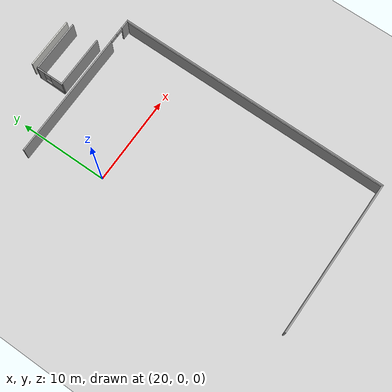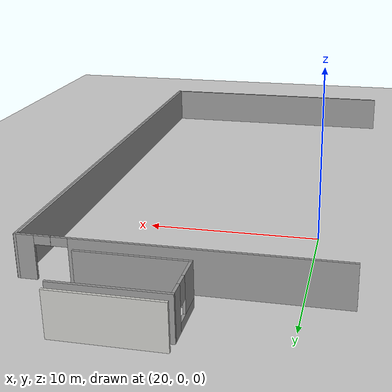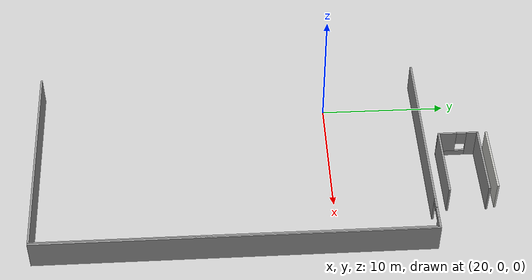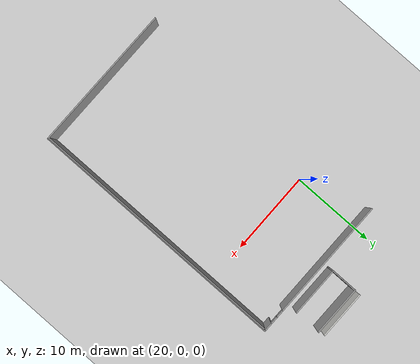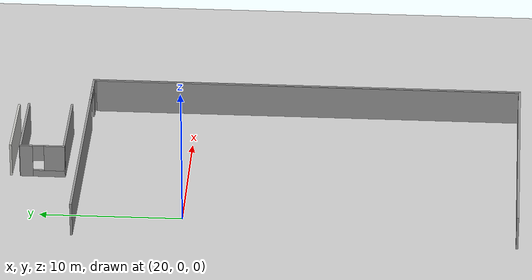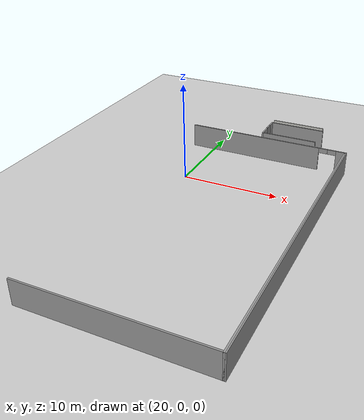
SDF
<sdf version="1.6">
 <world name="default">
  <model name="ground_plane">
   <static>1</static>
   <link name="link">
    <collision name="collision">
     <geometry><plane><normal>0 0 1</normal><size>100 100</size></plane></geometry>
     <surface>
      <contact><collide_bitmask>65535</collide_bitmask></contact>
      <friction><ode><mu>100</mu><mu2>50</mu2></ode></friction>
     </surface>
    </collision>
    <visual name="visual">
     <cast_shadows>0</cast_shadows>
     <geometry><plane><normal>0 0 1</normal><size>100 100</size></plane></geometry>
     <material>
      <script><uri>file://media/materials/scripts/gazebo.material</uri><name>Gazebo/Grey</name></script>
     </material>
    </visual>
   </link>
  </model>
  <model name="firstFloor">
   <pose>-0.116512 3.07366 0 0 -0 0</pose>
   <link name="Wall_1">
    <collision name="Wall_1_Collision">
     <geometry><box><size>17.25 0.15 2.5</size></box></geometry>
     <pose>0 0 1.25 0 -0 0</pose>
    </collision>
    <visual name="Wall_1_Visual">
     <pose>0 0 1.25 0 -0 0</pose>
     <geometry><box><size>17.25 0.15 2.5</size></box></geometry>
     <material>
      <script><uri>file://media/materials/scripts/gazebo.material</uri><name>Gazebo/Grey</name></script>
      <ambient>1 1 1 1</ambient>
     </material>
     <meta><layer>0</layer></meta>
    </visual>
    <pose>26.1908 -26.4098 0 0 -0 0</pose>
   </link>
   <link name="Wall_2">
    <collision name="Wall_2_Collision">
     <geometry><box><size>30.75 0.15 2.5</size></box></geometry>
     <pose>0 0 1.25 0 -0 0</pose>
    </collision>
    <visual name="Wall_2_Visual">
     <pose>0 0 1.25 0 -0 0</pose>
     <geometry><box><size>30.75 0.15 2.5</size></box></geometry>
     <material>
      <script><uri>file://media/materials/scripts/gazebo.material</uri><name>Gazebo/Grey</name></script>
      <ambient>1 1 1 1</ambient>
     </material>
     <meta><layer>0</layer></meta>
    </visual>
    <pose>34.7408 -11.1098 0 0 -0 1.5708</pose>
   </link>
   <link name="Wall_26">
    <collision name="Wall_26_Collision">
     <geometry><box><size>5.75 0.15 2.5</size></box></geometry>
     <pose>0 0 1.25 0 -0 0</pose>
    </collision>
    <visual name="Wall_26_Visual">
     <pose>0 0 1.25 0 -0 0</pose>
     <geometry><box><size>5.75 0.15 2.5</size></box></geometry>
     <material>
      <script><uri>file://media/materials/scripts/gazebo.material</uri><name>Gazebo/CeilingTiled</name></script>
      <ambient>1 1 1 1</ambient>
     </material>
     <meta><layer>0</layer></meta>
    </visual>
    <pose>28.1762 9.48348 0 0 -0 0</pose>
   </link>
   <link name="Wall_28">
    <collision name="Wall_28_Collision">
     <geometry><box><size>6 0.15 2.5</size></box></geometry>
     <pose>0 0 1.25 0 -0 0</pose>
    </collision>
    <visual name="Wall_28_Visual">
     <pose>0 0 1.25 0 -0 0</pose>
     <geometry><box><size>6 0.15 2.5</size></box></geometry>
     <material>
      <script><uri>file://media/materials/scripts/gazebo.material</uri><name>Gazebo/Grey</name></script>
      <ambient>1 1 1 1</ambient>
     </material>
     <meta><layer>0</layer></meta>
    </visual>
    <pose>28.2321 8.78663 0 0 -0 3.14159</pose>
   </link>
   <link name="Wall_29">
    <pose>25.3071 7.23663 0 0 0 -1.5708</pose>
    <visual name="Wall_29_Visual_0">
     <pose>-1.14911 0 1.25 0 -0 0</pose>
     <geometry><box><size>0.951772 0.15 2.5</size></box></geometry>
     <material>
      <script><uri>file://media/materials/scripts/gazebo.material</uri><name>Gazebo/Grey</name></script>
      <ambient>1 1 1 1</ambient>
     </material>
     <meta><layer>0</layer></meta>
    </visual>
    <collision name="Wall_29_Collision_0">
     <geometry><box><size>0.951772 0.15 2.5</size></box></geometry>
     <pose>-1.14911 0 1.25 0 -0 0</pose>
    </collision>
    <visual name="Wall_29_Visual_1">
     <pose>0.475886 0 0.25 0 -0 0</pose>
     <geometry><box><size>2.29823 0.15 0.5</size></box></geometry>
     <material>
      <script><uri>file://media/materials/scripts/gazebo.material</uri><name>Gazebo/Grey</name></script>
      <ambient>1 1 1 1</ambient>
     </material>
     <meta><layer>0</layer></meta>
    </visual>
    <collision name="Wall_29_Collision_1">
     <geometry><box><size>2.29823 0.15 0.5</size></box></geometry>
     <pose>0.475886 0 0.25 0 -0 0</pose>
    </collision>
    <visual name="Wall_29_Visual_2">
     <pose>0.875886 0 1.5 0 -0 0</pose>
     <geometry><box><size>1.49823 0.15 2</size></box></geometry>
     <material>
      <script><uri>file://media/materials/scripts/gazebo.material</uri><name>Gazebo/Grey</name></script>
      <ambient>1 1 1 1</ambient>
     </material>
     <meta><layer>0</layer></meta>
    </visual>
    <collision name="Wall_29_Collision_2">
     <geometry><box><size>1.49823 0.15 2</size></box></geometry>
     <pose>0.875886 0 1.5 0 -0 0</pose>
    </collision>
    <visual name="Wall_29_Visual_3">
     <pose>-0.273228 0 1.9 0 -0 0</pose>
     <geometry><box><size>0.8 0.15 1.2</size></box></geometry>
     <material>
      <script><uri>file://media/materials/scripts/gazebo.material</uri><name>Gazebo/Grey</name></script>
      <ambient>1 1 1 1</ambient>
     </material>
     <meta><layer>0</layer></meta>
    </visual>
    <collision name="Wall_29_Collision_3">
     <geometry><box><size>0.8 0.15 1.2</size></box></geometry>
     <pose>-0.273228 0 1.9 0 -0 0</pose>
    </collision>
   </link>
   <link name="Wall_30">
    <collision name="Wall_30_Collision">
     <geometry><box><size>6 0.15 2.5</size></box></geometry>
     <pose>0 0 1.25 0 -0 0</pose>
    </collision>
    <visual name="Wall_30_Visual">
     <pose>0 0 1.25 0 -0 0</pose>
     <geometry><box><size>6 0.15 2.5</size></box></geometry>
     <material>
      <script><uri>file://media/materials/scripts/gazebo.material</uri><name>Gazebo/Grey</name></script>
      <ambient>1 1 1 1</ambient>
     </material>
     <meta><layer>0</layer></meta>
    </visual>
    <pose>28.2321 5.68663 0 0 -0 0</pose>
   </link>
   <link name="Wall_4">
    <collision name="Wall_4_Collision">
     <geometry><box><size>31 0.15 2.5</size></box></geometry>
     <pose>0 0 1.25 0 -0 0</pose>
    </collision>
    <visual name="Wall_4_Visual">
     <pose>0 0 1.25 0 -0 0</pose>
     <geometry><box><size>31 0.15 2.5</size></box></geometry>
     <material>
      <script><uri>file://media/materials/scripts/gazebo.material</uri><name>Gazebo/Grey</name></script>
      <ambient>1 1 1 1</ambient>
     </material>
     <meta><layer>0</layer></meta>
    </visual>
    <pose>34.8468 -10.9803 0 0 0 -1.5708</pose>
   </link>
   <link name="Wall_7">
    <pose>26.2438 4.44243 0 0 -0 0.000262</pose>
    <visual name="Wall_7_Visual_0">
     <pose>-1.45777 0 1.25 0 -0 0</pose>
     <geometry><box><size>14.4405 0.15 2.5</size></box></geometry>
     <material>
      <script><uri>file://media/materials/scripts/gazebo.material</uri><name>Gazebo/Grey</name></script>
      <ambient>1 1 1 1</ambient>
     </material>
     <meta><layer>0</layer></meta>
    </visual>
    <collision name="Wall_7_Collision_0">
     <geometry><box><size>14.4405 0.15 2.5</size></box></geometry>
     <pose>-1.45777 0 1.25 0 -0 0</pose>
    </collision>
    <visual name="Wall_7_Visual_2">
     <pose>8.12388 0 1.25 0 -0 0</pose>
     <geometry><box><size>1.10824 0.15 2.5</size></box></geometry>
     <material>
      <script><uri>file://media/materials/scripts/gazebo.material</uri><name>Gazebo/Grey</name></script>
      <ambient>1 1 1 1</ambient>
     </material>
     <meta><layer>0</layer></meta>
    </visual>
    <collision name="Wall_7_Collision_2">
     <geometry><box><size>1.10824 0.15 2.5</size></box></geometry>
     <pose>8.12388 0 1.25 0 -0 0</pose>
    </collision>
    <visual name="Wall_7_Visual_3">
     <pose>6.21246 0 2.25 0 -0 0</pose>
     <geometry><box><size>0.9 0.15 0.5</size></box></geometry>
     <material>
      <script><uri>file://media/materials/scripts/gazebo.material</uri><name>Gazebo/Grey</name></script>
      <ambient>1 1 1 1</ambient>
     </material>
     <meta><layer>0</layer></meta>
    </visual>
    <collision name="Wall_7_Collision_3">
     <geometry><box><size>0.9 0.15 0.5</size></box></geometry>
     <pose>6.21246 0 2.25 0 -0 0</pose>
    </collision>
    <visual name="Wall_7_Visual_4">
     <pose>7.11976 0 2.25 0 -0 0</pose>
     <geometry><box><size>0.9 0.15 0.5</size></box></geometry>
     <material>
      <script><uri>file://media/materials/scripts/gazebo.material</uri><name>Gazebo/Grey</name></script>
      <ambient>1 1 1 1</ambient>
     </material>
     <meta><layer>0</layer></meta>
    </visual>
    <collision name="Wall_7_Collision_4">
     <geometry><box><size>0.9 0.15 0.5</size></box></geometry>
     <pose>7.11976 0 2.25 0 -0 0</pose>
    </collision>
   </link>
   <static>1</static>
  </model>
 </world>
</sdf>
